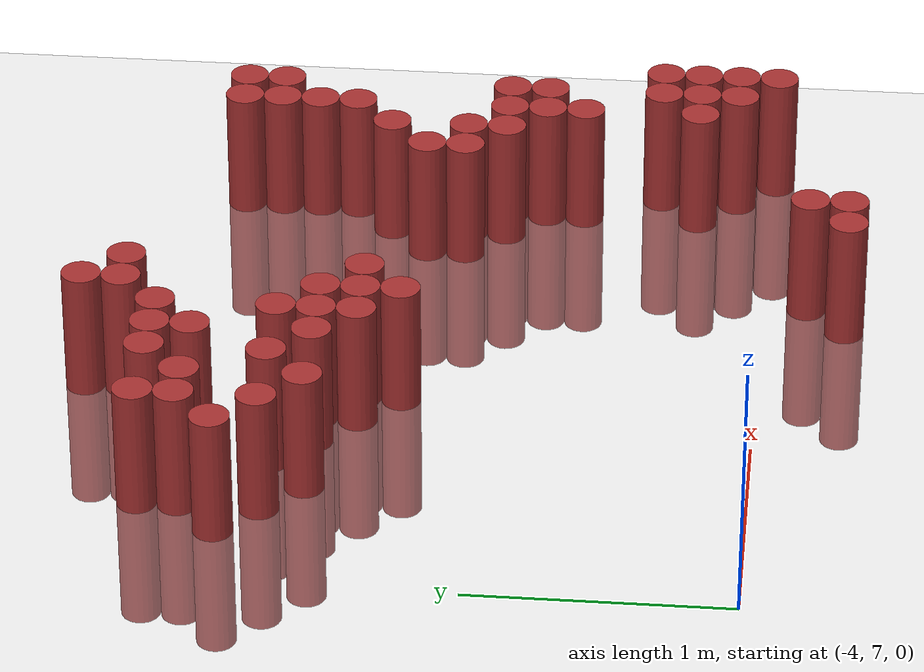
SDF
<sdf version="1.6">
 <world name="default">
  <model name="ground_plane">
   <static>1</static>
   <link name="link">
    <collision name="collision">
     <geometry><plane><normal>0 0 1</normal><size>100 100</size></plane></geometry>
     <surface><friction><ode><mu>100</mu><mu2>50</mu2></ode></friction></surface>
    </collision>
    <visual name="visual">
     <cast_shadows>0</cast_shadows>
     <geometry><plane><normal>0 0 1</normal><size>100 100</size></plane></geometry>
     <material>
      <script><uri>file://media/materials/scripts/gazebo.material</uri><name>Gazebo/Grey</name></script>
     </material>
    </visual>
   </link>
  </model>
  <model name="unit_cylinder_161">
   <static>1</static>
   <pose>-3.675000 8.925000 0.000000 0.000000 0.000000 0.000000</pose>
   <link name="link">
    <inertial>
     <mass>1</mass>
     <inertia><ixx>0.145833</ixx><ixy>0</ixy><ixz>0</ixz><iyy>0.145833</iyy><iyz>0</iyz><izz>0.125</izz></inertia>
    </inertial>
    <collision name="collision">
     <geometry><cylinder><radius>0.075000</radius><length>1</length></cylinder></geometry>
    </collision>
    <visual name="visual">
     <geometry><cylinder><radius>0.075000</radius><length>1</length></cylinder></geometry>
     <material>
      <ambient>0.648000 0.192000 0.192000 1</ambient>
      <diffuse>0.648000 0.192000 0.192000 1</diffuse>
     </material>
     <material>
      <script><name>Gazebo/Grey</name><uri>file://media/materials/scripts/gazebo.material</uri></script>
     </material>
    </visual>
   </link>
  </model>
  <model name="unit_cylinder_162">
   <static>1</static>
   <pose>-3.525000 8.775000 0.000000 0.000000 0.000000 0.000000</pose>
   <link name="link">
    <inertial>
     <mass>1</mass>
     <inertia><ixx>0.145833</ixx><ixy>0</ixy><ixz>0</ixz><iyy>0.145833</iyy><iyz>0</iyz><izz>0.125</izz></inertia>
    </inertial>
    <collision name="collision">
     <geometry><cylinder><radius>0.075000</radius><length>1</length></cylinder></geometry>
    </collision>
    <visual name="visual">
     <geometry><cylinder><radius>0.075000</radius><length>1</length></cylinder></geometry>
     <material>
      <ambient>0.648000 0.192000 0.192000 1</ambient>
      <diffuse>0.648000 0.192000 0.192000 1</diffuse>
     </material>
     <material>
      <script><name>Gazebo/Grey</name><uri>file://media/materials/scripts/gazebo.material</uri></script>
     </material>
    </visual>
   </link>
  </model>
  <model name="unit_cylinder_163">
   <static>1</static>
   <pose>-3.525000 9.075000 0.000000 0.000000 0.000000 0.000000</pose>
   <link name="link">
    <inertial>
     <mass>1</mass>
     <inertia><ixx>0.145833</ixx><ixy>0</ixy><ixz>0</ixz><iyy>0.145833</iyy><iyz>0</iyz><izz>0.125</izz></inertia>
    </inertial>
    <collision name="collision">
     <geometry><cylinder><radius>0.075000</radius><length>1</length></cylinder></geometry>
    </collision>
    <visual name="visual">
     <geometry><cylinder><radius>0.075000</radius><length>1</length></cylinder></geometry>
     <material>
      <ambient>0.648000 0.192000 0.192000 1</ambient>
      <diffuse>0.648000 0.192000 0.192000 1</diffuse>
     </material>
     <material>
      <script><name>Gazebo/Grey</name><uri>file://media/materials/scripts/gazebo.material</uri></script>
     </material>
    </visual>
   </link>
  </model>
  <model name="unit_cylinder_164">
   <static>1</static>
   <pose>-3.525000 9.225000 0.000000 0.000000 0.000000 0.000000</pose>
   <link name="link">
    <inertial>
     <mass>1</mass>
     <inertia><ixx>0.145833</ixx><ixy>0</ixy><ixz>0</ixz><iyy>0.145833</iyy><iyz>0</iyz><izz>0.125</izz></inertia>
    </inertial>
    <collision name="collision">
     <geometry><cylinder><radius>0.075000</radius><length>1</length></cylinder></geometry>
    </collision>
    <visual name="visual">
     <geometry><cylinder><radius>0.075000</radius><length>1</length></cylinder></geometry>
     <material>
      <ambient>0.648000 0.192000 0.192000 1</ambient>
      <diffuse>0.648000 0.192000 0.192000 1</diffuse>
     </material>
     <material>
      <script><name>Gazebo/Grey</name><uri>file://media/materials/scripts/gazebo.material</uri></script>
     </material>
    </visual>
   </link>
  </model>
  <model name="unit_cylinder_165">
   <static>1</static>
   <pose>-3.375000 8.625000 0.000000 0.000000 0.000000 0.000000</pose>
   <link name="link">
    <inertial>
     <mass>1</mass>
     <inertia><ixx>0.145833</ixx><ixy>0</ixy><ixz>0</ixz><iyy>0.145833</iyy><iyz>0</iyz><izz>0.125</izz></inertia>
    </inertial>
    <collision name="collision">
     <geometry><cylinder><radius>0.075000</radius><length>1</length></cylinder></geometry>
    </collision>
    <visual name="visual">
     <geometry><cylinder><radius>0.075000</radius><length>1</length></cylinder></geometry>
     <material>
      <ambient>0.648000 0.192000 0.192000 1</ambient>
      <diffuse>0.648000 0.192000 0.192000 1</diffuse>
     </material>
     <material>
      <script><name>Gazebo/Grey</name><uri>file://media/materials/scripts/gazebo.material</uri></script>
     </material>
    </visual>
   </link>
  </model>
  <model name="unit_cylinder_166">
   <static>1</static>
   <pose>-3.375000 9.075000 0.000000 0.000000 0.000000 0.000000</pose>
   <link name="link">
    <inertial>
     <mass>1</mass>
     <inertia><ixx>0.145833</ixx><ixy>0</ixy><ixz>0</ixz><iyy>0.145833</iyy><iyz>0</iyz><izz>0.125</izz></inertia>
    </inertial>
    <collision name="collision">
     <geometry><cylinder><radius>0.075000</radius><length>1</length></cylinder></geometry>
    </collision>
    <visual name="visual">
     <geometry><cylinder><radius>0.075000</radius><length>1</length></cylinder></geometry>
     <material>
      <ambient>0.648000 0.192000 0.192000 1</ambient>
      <diffuse>0.648000 0.192000 0.192000 1</diffuse>
     </material>
     <material>
      <script><name>Gazebo/Grey</name><uri>file://media/materials/scripts/gazebo.material</uri></script>
     </material>
    </visual>
   </link>
  </model>
  <model name="unit_cylinder_169">
   <static>1</static>
   <pose>-3.225000 8.775000 0.000000 0.000000 0.000000 0.000000</pose>
   <link name="link">
    <inertial>
     <mass>1</mass>
     <inertia><ixx>0.145833</ixx><ixy>0</ixy><ixz>0</ixz><iyy>0.145833</iyy><iyz>0</iyz><izz>0.125</izz></inertia>
    </inertial>
    <collision name="collision">
     <geometry><cylinder><radius>0.075000</radius><length>1</length></cylinder></geometry>
    </collision>
    <visual name="visual">
     <geometry><cylinder><radius>0.075000</radius><length>1</length></cylinder></geometry>
     <material>
      <ambient>0.648000 0.192000 0.192000 1</ambient>
      <diffuse>0.648000 0.192000 0.192000 1</diffuse>
     </material>
     <material>
      <script><name>Gazebo/Grey</name><uri>file://media/materials/scripts/gazebo.material</uri></script>
     </material>
    </visual>
   </link>
  </model>
  <model name="unit_cylinder_170">
   <static>1</static>
   <pose>-3.225000 9.225000 0.000000 0.000000 0.000000 0.000000</pose>
   <link name="link">
    <inertial>
     <mass>1</mass>
     <inertia><ixx>0.145833</ixx><ixy>0</ixy><ixz>0</ixz><iyy>0.145833</iyy><iyz>0</iyz><izz>0.125</izz></inertia>
    </inertial>
    <collision name="collision">
     <geometry><cylinder><radius>0.075000</radius><length>1</length></cylinder></geometry>
    </collision>
    <visual name="visual">
     <geometry><cylinder><radius>0.075000</radius><length>1</length></cylinder></geometry>
     <material>
      <ambient>0.648000 0.192000 0.192000 1</ambient>
      <diffuse>0.648000 0.192000 0.192000 1</diffuse>
     </material>
     <material>
      <script><name>Gazebo/Grey</name><uri>file://media/materials/scripts/gazebo.material</uri></script>
     </material>
    </visual>
   </link>
  </model>
  <model name="unit_cylinder_172">
   <static>1</static>
   <pose>-3.075000 8.625000 0.000000 0.000000 0.000000 0.000000</pose>
   <link name="link">
    <inertial>
     <mass>1</mass>
     <inertia><ixx>0.145833</ixx><ixy>0</ixy><ixz>0</ixz><iyy>0.145833</iyy><iyz>0</iyz><izz>0.125</izz></inertia>
    </inertial>
    <collision name="collision">
     <geometry><cylinder><radius>0.075000</radius><length>1</length></cylinder></geometry>
    </collision>
    <visual name="visual">
     <geometry><cylinder><radius>0.075000</radius><length>1</length></cylinder></geometry>
     <material>
      <ambient>0.648000 0.192000 0.192000 1</ambient>
      <diffuse>0.648000 0.192000 0.192000 1</diffuse>
     </material>
     <material>
      <script><name>Gazebo/Grey</name><uri>file://media/materials/scripts/gazebo.material</uri></script>
     </material>
    </visual>
   </link>
  </model>
  <model name="unit_cylinder_173">
   <static>1</static>
   <pose>-3.075000 9.075000 0.000000 0.000000 0.000000 0.000000</pose>
   <link name="link">
    <inertial>
     <mass>1</mass>
     <inertia><ixx>0.145833</ixx><ixy>0</ixy><ixz>0</ixz><iyy>0.145833</iyy><iyz>0</iyz><izz>0.125</izz></inertia>
    </inertial>
    <collision name="collision">
     <geometry><cylinder><radius>0.075000</radius><length>1</length></cylinder></geometry>
    </collision>
    <visual name="visual">
     <geometry><cylinder><radius>0.075000</radius><length>1</length></cylinder></geometry>
     <material>
      <ambient>0.648000 0.192000 0.192000 1</ambient>
      <diffuse>0.648000 0.192000 0.192000 1</diffuse>
     </material>
     <material>
      <script><name>Gazebo/Grey</name><uri>file://media/materials/scripts/gazebo.material</uri></script>
     </material>
    </visual>
   </link>
  </model>
  <model name="unit_cylinder_174">
   <static>1</static>
   <pose>-3.075000 9.225000 0.000000 0.000000 0.000000 0.000000</pose>
   <link name="link">
    <inertial>
     <mass>1</mass>
     <inertia><ixx>0.145833</ixx><ixy>0</ixy><ixz>0</ixz><iyy>0.145833</iyy><iyz>0</iyz><izz>0.125</izz></inertia>
    </inertial>
    <collision name="collision">
     <geometry><cylinder><radius>0.075000</radius><length>1</length></cylinder></geometry>
    </collision>
    <visual name="visual">
     <geometry><cylinder><radius>0.075000</radius><length>1</length></cylinder></geometry>
     <material>
      <ambient>0.648000 0.192000 0.192000 1</ambient>
      <diffuse>0.648000 0.192000 0.192000 1</diffuse>
     </material>
     <material>
      <script><name>Gazebo/Grey</name><uri>file://media/materials/scripts/gazebo.material</uri></script>
     </material>
    </visual>
   </link>
  </model>
  <model name="unit_cylinder_175">
   <static>1</static>
   <pose>-2.925000 8.475000 0.000000 0.000000 0.000000 0.000000</pose>
   <link name="link">
    <inertial>
     <mass>1</mass>
     <inertia><ixx>0.145833</ixx><ixy>0</ixy><ixz>0</ixz><iyy>0.145833</iyy><iyz>0</iyz><izz>0.125</izz></inertia>
    </inertial>
    <collision name="collision">
     <geometry><cylinder><radius>0.075000</radius><length>1</length></cylinder></geometry>
    </collision>
    <visual name="visual">
     <geometry><cylinder><radius>0.075000</radius><length>1</length></cylinder></geometry>
     <material>
      <ambient>0.648000 0.192000 0.192000 1</ambient>
      <diffuse>0.648000 0.192000 0.192000 1</diffuse>
     </material>
     <material>
      <script><name>Gazebo/Grey</name><uri>file://media/materials/scripts/gazebo.material</uri></script>
     </material>
    </visual>
   </link>
  </model>
  <model name="unit_cylinder_176">
   <static>1</static>
   <pose>-2.925000 8.625000 0.000000 0.000000 0.000000 0.000000</pose>
   <link name="link">
    <inertial>
     <mass>1</mass>
     <inertia><ixx>0.145833</ixx><ixy>0</ixy><ixz>0</ixz><iyy>0.145833</iyy><iyz>0</iyz><izz>0.125</izz></inertia>
    </inertial>
    <collision name="collision">
     <geometry><cylinder><radius>0.075000</radius><length>1</length></cylinder></geometry>
    </collision>
    <visual name="visual">
     <geometry><cylinder><radius>0.075000</radius><length>1</length></cylinder></geometry>
     <material>
      <ambient>0.648000 0.192000 0.192000 1</ambient>
      <diffuse>0.648000 0.192000 0.192000 1</diffuse>
     </material>
     <material>
      <script><name>Gazebo/Grey</name><uri>file://media/materials/scripts/gazebo.material</uri></script>
     </material>
    </visual>
   </link>
  </model>
  <model name="unit_cylinder_177">
   <static>1</static>
   <pose>-2.925000 8.775000 0.000000 0.000000 0.000000 0.000000</pose>
   <link name="link">
    <inertial>
     <mass>1</mass>
     <inertia><ixx>0.145833</ixx><ixy>0</ixy><ixz>0</ixz><iyy>0.145833</iyy><iyz>0</iyz><izz>0.125</izz></inertia>
    </inertial>
    <collision name="collision">
     <geometry><cylinder><radius>0.075000</radius><length>1</length></cylinder></geometry>
    </collision>
    <visual name="visual">
     <geometry><cylinder><radius>0.075000</radius><length>1</length></cylinder></geometry>
     <material>
      <ambient>0.648000 0.192000 0.192000 1</ambient>
      <diffuse>0.648000 0.192000 0.192000 1</diffuse>
     </material>
     <material>
      <script><name>Gazebo/Grey</name><uri>file://media/materials/scripts/gazebo.material</uri></script>
     </material>
    </visual>
   </link>
  </model>
  <model name="unit_cylinder_178">
   <static>1</static>
   <pose>-2.925000 9.225000 0.000000 0.000000 0.000000 0.000000</pose>
   <link name="link">
    <inertial>
     <mass>1</mass>
     <inertia><ixx>0.145833</ixx><ixy>0</ixy><ixz>0</ixz><iyy>0.145833</iyy><iyz>0</iyz><izz>0.125</izz></inertia>
    </inertial>
    <collision name="collision">
     <geometry><cylinder><radius>0.075000</radius><length>1</length></cylinder></geometry>
    </collision>
    <visual name="visual">
     <geometry><cylinder><radius>0.075000</radius><length>1</length></cylinder></geometry>
     <material>
      <ambient>0.648000 0.192000 0.192000 1</ambient>
      <diffuse>0.648000 0.192000 0.192000 1</diffuse>
     </material>
     <material>
      <script><name>Gazebo/Grey</name><uri>file://media/materials/scripts/gazebo.material</uri></script>
     </material>
    </visual>
   </link>
  </model>
  <model name="unit_cylinder_179">
   <static>1</static>
   <pose>-2.775000 8.325000 0.000000 0.000000 0.000000 0.000000</pose>
   <link name="link">
    <inertial>
     <mass>1</mass>
     <inertia><ixx>0.145833</ixx><ixy>0</ixy><ixz>0</ixz><iyy>0.145833</iyy><iyz>0</iyz><izz>0.125</izz></inertia>
    </inertial>
    <collision name="collision">
     <geometry><cylinder><radius>0.075000</radius><length>1</length></cylinder></geometry>
    </collision>
    <visual name="visual">
     <geometry><cylinder><radius>0.075000</radius><length>1</length></cylinder></geometry>
     <material>
      <ambient>0.648000 0.192000 0.192000 1</ambient>
      <diffuse>0.648000 0.192000 0.192000 1</diffuse>
     </material>
     <material>
      <script><name>Gazebo/Grey</name><uri>file://media/materials/scripts/gazebo.material</uri></script>
     </material>
    </visual>
   </link>
  </model>
  <model name="unit_cylinder_180">
   <static>1</static>
   <pose>-2.775000 8.475000 0.000000 0.000000 0.000000 0.000000</pose>
   <link name="link">
    <inertial>
     <mass>1</mass>
     <inertia><ixx>0.145833</ixx><ixy>0</ixy><ixz>0</ixz><iyy>0.145833</iyy><iyz>0</iyz><izz>0.125</izz></inertia>
    </inertial>
    <collision name="collision">
     <geometry><cylinder><radius>0.075000</radius><length>1</length></cylinder></geometry>
    </collision>
    <visual name="visual">
     <geometry><cylinder><radius>0.075000</radius><length>1</length></cylinder></geometry>
     <material>
      <ambient>0.648000 0.192000 0.192000 1</ambient>
      <diffuse>0.648000 0.192000 0.192000 1</diffuse>
     </material>
     <material>
      <script><name>Gazebo/Grey</name><uri>file://media/materials/scripts/gazebo.material</uri></script>
     </material>
    </visual>
   </link>
  </model>
  <model name="unit_cylinder_181">
   <static>1</static>
   <pose>-2.775000 8.625000 0.000000 0.000000 0.000000 0.000000</pose>
   <link name="link">
    <inertial>
     <mass>1</mass>
     <inertia><ixx>0.145833</ixx><ixy>0</ixy><ixz>0</ixz><iyy>0.145833</iyy><iyz>0</iyz><izz>0.125</izz></inertia>
    </inertial>
    <collision name="collision">
     <geometry><cylinder><radius>0.075000</radius><length>1</length></cylinder></geometry>
    </collision>
    <visual name="visual">
     <geometry><cylinder><radius>0.075000</radius><length>1</length></cylinder></geometry>
     <material>
      <ambient>0.648000 0.192000 0.192000 1</ambient>
      <diffuse>0.648000 0.192000 0.192000 1</diffuse>
     </material>
     <material>
      <script><name>Gazebo/Grey</name><uri>file://media/materials/scripts/gazebo.material</uri></script>
     </material>
    </visual>
   </link>
  </model>
  <model name="unit_cylinder_182">
   <static>1</static>
   <pose>-2.775000 9.375000 0.000000 0.000000 0.000000 0.000000</pose>
   <link name="link">
    <inertial>
     <mass>1</mass>
     <inertia><ixx>0.145833</ixx><ixy>0</ixy><ixz>0</ixz><iyy>0.145833</iyy><iyz>0</iyz><izz>0.125</izz></inertia>
    </inertial>
    <collision name="collision">
     <geometry><cylinder><radius>0.075000</radius><length>1</length></cylinder></geometry>
    </collision>
    <visual name="visual">
     <geometry><cylinder><radius>0.075000</radius><length>1</length></cylinder></geometry>
     <material>
      <ambient>0.648000 0.192000 0.192000 1</ambient>
      <diffuse>0.648000 0.192000 0.192000 1</diffuse>
     </material>
     <material>
      <script><name>Gazebo/Grey</name><uri>file://media/materials/scripts/gazebo.material</uri></script>
     </material>
    </visual>
   </link>
  </model>
  <model name="unit_cylinder_183">
   <static>1</static>
   <pose>-2.775000 9.525000 0.000000 0.000000 0.000000 0.000000</pose>
   <link name="link">
    <inertial>
     <mass>1</mass>
     <inertia><ixx>0.145833</ixx><ixy>0</ixy><ixz>0</ixz><iyy>0.145833</iyy><iyz>0</iyz><izz>0.125</izz></inertia>
    </inertial>
    <collision name="collision">
     <geometry><cylinder><radius>0.075000</radius><length>1</length></cylinder></geometry>
    </collision>
    <visual name="visual">
     <geometry><cylinder><radius>0.075000</radius><length>1</length></cylinder></geometry>
     <material>
      <ambient>0.648000 0.192000 0.192000 1</ambient>
      <diffuse>0.648000 0.192000 0.192000 1</diffuse>
     </material>
     <material>
      <script><name>Gazebo/Grey</name><uri>file://media/materials/scripts/gazebo.material</uri></script>
     </material>
    </visual>
   </link>
  </model>
  <model name="unit_cylinder_185">
   <static>1</static>
   <pose>-2.625000 8.475000 0.000000 0.000000 0.000000 0.000000</pose>
   <link name="link">
    <inertial>
     <mass>1</mass>
     <inertia><ixx>0.145833</ixx><ixy>0</ixy><ixz>0</ixz><iyy>0.145833</iyy><iyz>0</iyz><izz>0.125</izz></inertia>
    </inertial>
    <collision name="collision">
     <geometry><cylinder><radius>0.075000</radius><length>1</length></cylinder></geometry>
    </collision>
    <visual name="visual">
     <geometry><cylinder><radius>0.075000</radius><length>1</length></cylinder></geometry>
     <material>
      <ambient>0.648000 0.192000 0.192000 1</ambient>
      <diffuse>0.648000 0.192000 0.192000 1</diffuse>
     </material>
     <material>
      <script><name>Gazebo/Grey</name><uri>file://media/materials/scripts/gazebo.material</uri></script>
     </material>
    </visual>
   </link>
  </model>
  <model name="unit_cylinder_186">
   <static>1</static>
   <pose>-2.625000 9.375000 0.000000 0.000000 0.000000 0.000000</pose>
   <link name="link">
    <inertial>
     <mass>1</mass>
     <inertia><ixx>0.145833</ixx><ixy>0</ixy><ixz>0</ixz><iyy>0.145833</iyy><iyz>0</iyz><izz>0.125</izz></inertia>
    </inertial>
    <collision name="collision">
     <geometry><cylinder><radius>0.075000</radius><length>1</length></cylinder></geometry>
    </collision>
    <visual name="visual">
     <geometry><cylinder><radius>0.075000</radius><length>1</length></cylinder></geometry>
     <material>
      <ambient>0.648000 0.192000 0.192000 1</ambient>
      <diffuse>0.648000 0.192000 0.192000 1</diffuse>
     </material>
     <material>
      <script><name>Gazebo/Grey</name><uri>file://media/materials/scripts/gazebo.material</uri></script>
     </material>
    </visual>
   </link>
  </model>
  <model name="unit_cylinder_193">
   <static>1</static>
   <pose>-2.175000 6.675000 0.000000 0.000000 0.000000 0.000000</pose>
   <link name="link">
    <inertial>
     <mass>1</mass>
     <inertia><ixx>0.145833</ixx><ixy>0</ixy><ixz>0</ixz><iyy>0.145833</iyy><iyz>0</iyz><izz>0.125</izz></inertia>
    </inertial>
    <collision name="collision">
     <geometry><cylinder><radius>0.075000</radius><length>1</length></cylinder></geometry>
    </collision>
    <visual name="visual">
     <geometry><cylinder><radius>0.075000</radius><length>1</length></cylinder></geometry>
     <material>
      <ambient>0.648000 0.192000 0.192000 1</ambient>
      <diffuse>0.648000 0.192000 0.192000 1</diffuse>
     </material>
     <material>
      <script><name>Gazebo/Grey</name><uri>file://media/materials/scripts/gazebo.material</uri></script>
     </material>
    </visual>
   </link>
  </model>
  <model name="unit_cylinder_194">
   <static>1</static>
   <pose>-2.025000 6.675000 0.000000 0.000000 0.000000 0.000000</pose>
   <link name="link">
    <inertial>
     <mass>1</mass>
     <inertia><ixx>0.145833</ixx><ixy>0</ixy><ixz>0</ixz><iyy>0.145833</iyy><iyz>0</iyz><izz>0.125</izz></inertia>
    </inertial>
    <collision name="collision">
     <geometry><cylinder><radius>0.075000</radius><length>1</length></cylinder></geometry>
    </collision>
    <visual name="visual">
     <geometry><cylinder><radius>0.075000</radius><length>1</length></cylinder></geometry>
     <material>
      <ambient>0.648000 0.192000 0.192000 1</ambient>
      <diffuse>0.648000 0.192000 0.192000 1</diffuse>
     </material>
     <material>
      <script><name>Gazebo/Grey</name><uri>file://media/materials/scripts/gazebo.material</uri></script>
     </material>
    </visual>
   </link>
  </model>
  <model name="unit_cylinder_195">
   <static>1</static>
   <pose>-2.025000 6.825000 0.000000 0.000000 0.000000 0.000000</pose>
   <link name="link">
    <inertial>
     <mass>1</mass>
     <inertia><ixx>0.145833</ixx><ixy>0</ixy><ixz>0</ixz><iyy>0.145833</iyy><iyz>0</iyz><izz>0.125</izz></inertia>
    </inertial>
    <collision name="collision">
     <geometry><cylinder><radius>0.075000</radius><length>1</length></cylinder></geometry>
    </collision>
    <visual name="visual">
     <geometry><cylinder><radius>0.075000</radius><length>1</length></cylinder></geometry>
     <material>
      <ambient>0.648000 0.192000 0.192000 1</ambient>
      <diffuse>0.648000 0.192000 0.192000 1</diffuse>
     </material>
     <material>
      <script><name>Gazebo/Grey</name><uri>file://media/materials/scripts/gazebo.material</uri></script>
     </material>
    </visual>
   </link>
  </model>
  <model name="unit_cylinder_198">
   <static>1</static>
   <pose>-1.725000 8.175000 0.000000 0.000000 0.000000 0.000000</pose>
   <link name="link">
    <inertial>
     <mass>1</mass>
     <inertia><ixx>0.145833</ixx><ixy>0</ixy><ixz>0</ixz><iyy>0.145833</iyy><iyz>0</iyz><izz>0.125</izz></inertia>
    </inertial>
    <collision name="collision">
     <geometry><cylinder><radius>0.075000</radius><length>1</length></cylinder></geometry>
    </collision>
    <visual name="visual">
     <geometry><cylinder><radius>0.075000</radius><length>1</length></cylinder></geometry>
     <material>
      <ambient>0.648000 0.192000 0.192000 1</ambient>
      <diffuse>0.648000 0.192000 0.192000 1</diffuse>
     </material>
     <material>
      <script><name>Gazebo/Grey</name><uri>file://media/materials/scripts/gazebo.material</uri></script>
     </material>
    </visual>
   </link>
  </model>
  <model name="unit_cylinder_199">
   <static>1</static>
   <pose>-1.725000 8.325000 0.000000 0.000000 0.000000 0.000000</pose>
   <link name="link">
    <inertial>
     <mass>1</mass>
     <inertia><ixx>0.145833</ixx><ixy>0</ixy><ixz>0</ixz><iyy>0.145833</iyy><iyz>0</iyz><izz>0.125</izz></inertia>
    </inertial>
    <collision name="collision">
     <geometry><cylinder><radius>0.075000</radius><length>1</length></cylinder></geometry>
    </collision>
    <visual name="visual">
     <geometry><cylinder><radius>0.075000</radius><length>1</length></cylinder></geometry>
     <material>
      <ambient>0.648000 0.192000 0.192000 1</ambient>
      <diffuse>0.648000 0.192000 0.192000 1</diffuse>
     </material>
     <material>
      <script><name>Gazebo/Grey</name><uri>file://media/materials/scripts/gazebo.material</uri></script>
     </material>
    </visual>
   </link>
  </model>
  <model name="unit_cylinder_205">
   <static>1</static>
   <pose>-1.575000 8.025000 0.000000 0.000000 0.000000 0.000000</pose>
   <link name="link">
    <inertial>
     <mass>1</mass>
     <inertia><ixx>0.145833</ixx><ixy>0</ixy><ixz>0</ixz><iyy>0.145833</iyy><iyz>0</iyz><izz>0.125</izz></inertia>
    </inertial>
    <collision name="collision">
     <geometry><cylinder><radius>0.075000</radius><length>1</length></cylinder></geometry>
    </collision>
    <visual name="visual">
     <geometry><cylinder><radius>0.075000</radius><length>1</length></cylinder></geometry>
     <material>
      <ambient>0.648000 0.192000 0.192000 1</ambient>
      <diffuse>0.648000 0.192000 0.192000 1</diffuse>
     </material>
     <material>
      <script><name>Gazebo/Grey</name><uri>file://media/materials/scripts/gazebo.material</uri></script>
     </material>
    </visual>
   </link>
  </model>
  <model name="unit_cylinder_206">
   <static>1</static>
   <pose>-1.575000 8.175000 0.000000 0.000000 0.000000 0.000000</pose>
   <link name="link">
    <inertial>
     <mass>1</mass>
     <inertia><ixx>0.145833</ixx><ixy>0</ixy><ixz>0</ixz><iyy>0.145833</iyy><iyz>0</iyz><izz>0.125</izz></inertia>
    </inertial>
    <collision name="collision">
     <geometry><cylinder><radius>0.075000</radius><length>1</length></cylinder></geometry>
    </collision>
    <visual name="visual">
     <geometry><cylinder><radius>0.075000</radius><length>1</length></cylinder></geometry>
     <material>
      <ambient>0.648000 0.192000 0.192000 1</ambient>
      <diffuse>0.648000 0.192000 0.192000 1</diffuse>
     </material>
     <material>
      <script><name>Gazebo/Grey</name><uri>file://media/materials/scripts/gazebo.material</uri></script>
     </material>
    </visual>
   </link>
  </model>
  <model name="unit_cylinder_207">
   <static>1</static>
   <pose>-1.575000 8.475000 0.000000 0.000000 0.000000 0.000000</pose>
   <link name="link">
    <inertial>
     <mass>1</mass>
     <inertia><ixx>0.145833</ixx><ixy>0</ixy><ixz>0</ixz><iyy>0.145833</iyy><iyz>0</iyz><izz>0.125</izz></inertia>
    </inertial>
    <collision name="collision">
     <geometry><cylinder><radius>0.075000</radius><length>1</length></cylinder></geometry>
    </collision>
    <visual name="visual">
     <geometry><cylinder><radius>0.075000</radius><length>1</length></cylinder></geometry>
     <material>
      <ambient>0.648000 0.192000 0.192000 1</ambient>
      <diffuse>0.648000 0.192000 0.192000 1</diffuse>
     </material>
     <material>
      <script><name>Gazebo/Grey</name><uri>file://media/materials/scripts/gazebo.material</uri></script>
     </material>
    </visual>
   </link>
  </model>
  <model name="unit_cylinder_211">
   <static>1</static>
   <pose>-1.425000 7.275000 0.000000 0.000000 0.000000 0.000000</pose>
   <link name="link">
    <inertial>
     <mass>1</mass>
     <inertia><ixx>0.145833</ixx><ixy>0</ixy><ixz>0</ixz><iyy>0.145833</iyy><iyz>0</iyz><izz>0.125</izz></inertia>
    </inertial>
    <collision name="collision">
     <geometry><cylinder><radius>0.075000</radius><length>1</length></cylinder></geometry>
    </collision>
    <visual name="visual">
     <geometry><cylinder><radius>0.075000</radius><length>1</length></cylinder></geometry>
     <material>
      <ambient>0.648000 0.192000 0.192000 1</ambient>
      <diffuse>0.648000 0.192000 0.192000 1</diffuse>
     </material>
     <material>
      <script><name>Gazebo/Grey</name><uri>file://media/materials/scripts/gazebo.material</uri></script>
     </material>
    </visual>
   </link>
  </model>
  <model name="unit_cylinder_212">
   <static>1</static>
   <pose>-1.425000 7.725000 0.000000 0.000000 0.000000 0.000000</pose>
   <link name="link">
    <inertial>
     <mass>1</mass>
     <inertia><ixx>0.145833</ixx><ixy>0</ixy><ixz>0</ixz><iyy>0.145833</iyy><iyz>0</iyz><izz>0.125</izz></inertia>
    </inertial>
    <collision name="collision">
     <geometry><cylinder><radius>0.075000</radius><length>1</length></cylinder></geometry>
    </collision>
    <visual name="visual">
     <geometry><cylinder><radius>0.075000</radius><length>1</length></cylinder></geometry>
     <material>
      <ambient>0.648000 0.192000 0.192000 1</ambient>
      <diffuse>0.648000 0.192000 0.192000 1</diffuse>
     </material>
     <material>
      <script><name>Gazebo/Grey</name><uri>file://media/materials/scripts/gazebo.material</uri></script>
     </material>
    </visual>
   </link>
  </model>
  <model name="unit_cylinder_213">
   <static>1</static>
   <pose>-1.425000 7.875000 0.000000 0.000000 0.000000 0.000000</pose>
   <link name="link">
    <inertial>
     <mass>1</mass>
     <inertia><ixx>0.145833</ixx><ixy>0</ixy><ixz>0</ixz><iyy>0.145833</iyy><iyz>0</iyz><izz>0.125</izz></inertia>
    </inertial>
    <collision name="collision">
     <geometry><cylinder><radius>0.075000</radius><length>1</length></cylinder></geometry>
    </collision>
    <visual name="visual">
     <geometry><cylinder><radius>0.075000</radius><length>1</length></cylinder></geometry>
     <material>
      <ambient>0.648000 0.192000 0.192000 1</ambient>
      <diffuse>0.648000 0.192000 0.192000 1</diffuse>
     </material>
     <material>
      <script><name>Gazebo/Grey</name><uri>file://media/materials/scripts/gazebo.material</uri></script>
     </material>
    </visual>
   </link>
  </model>
  <model name="unit_cylinder_214">
   <static>1</static>
   <pose>-1.425000 8.025000 0.000000 0.000000 0.000000 0.000000</pose>
   <link name="link">
    <inertial>
     <mass>1</mass>
     <inertia><ixx>0.145833</ixx><ixy>0</ixy><ixz>0</ixz><iyy>0.145833</iyy><iyz>0</iyz><izz>0.125</izz></inertia>
    </inertial>
    <collision name="collision">
     <geometry><cylinder><radius>0.075000</radius><length>1</length></cylinder></geometry>
    </collision>
    <visual name="visual">
     <geometry><cylinder><radius>0.075000</radius><length>1</length></cylinder></geometry>
     <material>
      <ambient>0.648000 0.192000 0.192000 1</ambient>
      <diffuse>0.648000 0.192000 0.192000 1</diffuse>
     </material>
     <material>
      <script><name>Gazebo/Grey</name><uri>file://media/materials/scripts/gazebo.material</uri></script>
     </material>
    </visual>
   </link>
  </model>
  <model name="unit_cylinder_215">
   <static>1</static>
   <pose>-1.425000 8.625000 0.000000 0.000000 0.000000 0.000000</pose>
   <link name="link">
    <inertial>
     <mass>1</mass>
     <inertia><ixx>0.145833</ixx><ixy>0</ixy><ixz>0</ixz><iyy>0.145833</iyy><iyz>0</iyz><izz>0.125</izz></inertia>
    </inertial>
    <collision name="collision">
     <geometry><cylinder><radius>0.075000</radius><length>1</length></cylinder></geometry>
    </collision>
    <visual name="visual">
     <geometry><cylinder><radius>0.075000</radius><length>1</length></cylinder></geometry>
     <material>
      <ambient>0.648000 0.192000 0.192000 1</ambient>
      <diffuse>0.648000 0.192000 0.192000 1</diffuse>
     </material>
     <material>
      <script><name>Gazebo/Grey</name><uri>file://media/materials/scripts/gazebo.material</uri></script>
     </material>
    </visual>
   </link>
  </model>
  <model name="unit_cylinder_216">
   <static>1</static>
   <pose>-1.425000 8.775000 0.000000 0.000000 0.000000 0.000000</pose>
   <link name="link">
    <inertial>
     <mass>1</mass>
     <inertia><ixx>0.145833</ixx><ixy>0</ixy><ixz>0</ixz><iyy>0.145833</iyy><iyz>0</iyz><izz>0.125</izz></inertia>
    </inertial>
    <collision name="collision">
     <geometry><cylinder><radius>0.075000</radius><length>1</length></cylinder></geometry>
    </collision>
    <visual name="visual">
     <geometry><cylinder><radius>0.075000</radius><length>1</length></cylinder></geometry>
     <material>
      <ambient>0.648000 0.192000 0.192000 1</ambient>
      <diffuse>0.648000 0.192000 0.192000 1</diffuse>
     </material>
     <material>
      <script><name>Gazebo/Grey</name><uri>file://media/materials/scripts/gazebo.material</uri></script>
     </material>
    </visual>
   </link>
  </model>
  <model name="unit_cylinder_217">
   <static>1</static>
   <pose>-1.425000 8.925000 0.000000 0.000000 0.000000 0.000000</pose>
   <link name="link">
    <inertial>
     <mass>1</mass>
     <inertia><ixx>0.145833</ixx><ixy>0</ixy><ixz>0</ixz><iyy>0.145833</iyy><iyz>0</iyz><izz>0.125</izz></inertia>
    </inertial>
    <collision name="collision">
     <geometry><cylinder><radius>0.075000</radius><length>1</length></cylinder></geometry>
    </collision>
    <visual name="visual">
     <geometry><cylinder><radius>0.075000</radius><length>1</length></cylinder></geometry>
     <material>
      <ambient>0.648000 0.192000 0.192000 1</ambient>
      <diffuse>0.648000 0.192000 0.192000 1</diffuse>
     </material>
     <material>
      <script><name>Gazebo/Grey</name><uri>file://media/materials/scripts/gazebo.material</uri></script>
     </material>
    </visual>
   </link>
  </model>
  <model name="unit_cylinder_218">
   <static>1</static>
   <pose>-1.425000 9.075000 0.000000 0.000000 0.000000 0.000000</pose>
   <link name="link">
    <inertial>
     <mass>1</mass>
     <inertia><ixx>0.145833</ixx><ixy>0</ixy><ixz>0</ixz><iyy>0.145833</iyy><iyz>0</iyz><izz>0.125</izz></inertia>
    </inertial>
    <collision name="collision">
     <geometry><cylinder><radius>0.075000</radius><length>1</length></cylinder></geometry>
    </collision>
    <visual name="visual">
     <geometry><cylinder><radius>0.075000</radius><length>1</length></cylinder></geometry>
     <material>
      <ambient>0.648000 0.192000 0.192000 1</ambient>
      <diffuse>0.648000 0.192000 0.192000 1</diffuse>
     </material>
     <material>
      <script><name>Gazebo/Grey</name><uri>file://media/materials/scripts/gazebo.material</uri></script>
     </material>
    </visual>
   </link>
  </model>
  <model name="unit_cylinder_220">
   <static>1</static>
   <pose>-1.275000 7.125000 0.000000 0.000000 0.000000 0.000000</pose>
   <link name="link">
    <inertial>
     <mass>1</mass>
     <inertia><ixx>0.145833</ixx><ixy>0</ixy><ixz>0</ixz><iyy>0.145833</iyy><iyz>0</iyz><izz>0.125</izz></inertia>
    </inertial>
    <collision name="collision">
     <geometry><cylinder><radius>0.075000</radius><length>1</length></cylinder></geometry>
    </collision>
    <visual name="visual">
     <geometry><cylinder><radius>0.075000</radius><length>1</length></cylinder></geometry>
     <material>
      <ambient>0.648000 0.192000 0.192000 1</ambient>
      <diffuse>0.648000 0.192000 0.192000 1</diffuse>
     </material>
     <material>
      <script><name>Gazebo/Grey</name><uri>file://media/materials/scripts/gazebo.material</uri></script>
     </material>
    </visual>
   </link>
  </model>
  <model name="unit_cylinder_221">
   <static>1</static>
   <pose>-1.275000 7.275000 0.000000 0.000000 0.000000 0.000000</pose>
   <link name="link">
    <inertial>
     <mass>1</mass>
     <inertia><ixx>0.145833</ixx><ixy>0</ixy><ixz>0</ixz><iyy>0.145833</iyy><iyz>0</iyz><izz>0.125</izz></inertia>
    </inertial>
    <collision name="collision">
     <geometry><cylinder><radius>0.075000</radius><length>1</length></cylinder></geometry>
    </collision>
    <visual name="visual">
     <geometry><cylinder><radius>0.075000</radius><length>1</length></cylinder></geometry>
     <material>
      <ambient>0.648000 0.192000 0.192000 1</ambient>
      <diffuse>0.648000 0.192000 0.192000 1</diffuse>
     </material>
     <material>
      <script><name>Gazebo/Grey</name><uri>file://media/materials/scripts/gazebo.material</uri></script>
     </material>
    </visual>
   </link>
  </model>
  <model name="unit_cylinder_222">
   <static>1</static>
   <pose>-1.275000 7.425000 0.000000 0.000000 0.000000 0.000000</pose>
   <link name="link">
    <inertial>
     <mass>1</mass>
     <inertia><ixx>0.145833</ixx><ixy>0</ixy><ixz>0</ixz><iyy>0.145833</iyy><iyz>0</iyz><izz>0.125</izz></inertia>
    </inertial>
    <collision name="collision">
     <geometry><cylinder><radius>0.075000</radius><length>1</length></cylinder></geometry>
    </collision>
    <visual name="visual">
     <geometry><cylinder><radius>0.075000</radius><length>1</length></cylinder></geometry>
     <material>
      <ambient>0.648000 0.192000 0.192000 1</ambient>
      <diffuse>0.648000 0.192000 0.192000 1</diffuse>
     </material>
     <material>
      <script><name>Gazebo/Grey</name><uri>file://media/materials/scripts/gazebo.material</uri></script>
     </material>
    </visual>
   </link>
  </model>
  <model name="unit_cylinder_223">
   <static>1</static>
   <pose>-1.275000 7.875000 0.000000 0.000000 0.000000 0.000000</pose>
   <link name="link">
    <inertial>
     <mass>1</mass>
     <inertia><ixx>0.145833</ixx><ixy>0</ixy><ixz>0</ixz><iyy>0.145833</iyy><iyz>0</iyz><izz>0.125</izz></inertia>
    </inertial>
    <collision name="collision">
     <geometry><cylinder><radius>0.075000</radius><length>1</length></cylinder></geometry>
    </collision>
    <visual name="visual">
     <geometry><cylinder><radius>0.075000</radius><length>1</length></cylinder></geometry>
     <material>
      <ambient>0.648000 0.192000 0.192000 1</ambient>
      <diffuse>0.648000 0.192000 0.192000 1</diffuse>
     </material>
     <material>
      <script><name>Gazebo/Grey</name><uri>file://media/materials/scripts/gazebo.material</uri></script>
     </material>
    </visual>
   </link>
  </model>
  <model name="unit_cylinder_224">
   <static>1</static>
   <pose>-1.275000 8.025000 0.000000 0.000000 0.000000 0.000000</pose>
   <link name="link">
    <inertial>
     <mass>1</mass>
     <inertia><ixx>0.145833</ixx><ixy>0</ixy><ixz>0</ixz><iyy>0.145833</iyy><iyz>0</iyz><izz>0.125</izz></inertia>
    </inertial>
    <collision name="collision">
     <geometry><cylinder><radius>0.075000</radius><length>1</length></cylinder></geometry>
    </collision>
    <visual name="visual">
     <geometry><cylinder><radius>0.075000</radius><length>1</length></cylinder></geometry>
     <material>
      <ambient>0.648000 0.192000 0.192000 1</ambient>
      <diffuse>0.648000 0.192000 0.192000 1</diffuse>
     </material>
     <material>
      <script><name>Gazebo/Grey</name><uri>file://media/materials/scripts/gazebo.material</uri></script>
     </material>
    </visual>
   </link>
  </model>
  <model name="unit_cylinder_225">
   <static>1</static>
   <pose>-1.275000 8.925000 0.000000 0.000000 0.000000 0.000000</pose>
   <link name="link">
    <inertial>
     <mass>1</mass>
     <inertia><ixx>0.145833</ixx><ixy>0</ixy><ixz>0</ixz><iyy>0.145833</iyy><iyz>0</iyz><izz>0.125</izz></inertia>
    </inertial>
    <collision name="collision">
     <geometry><cylinder><radius>0.075000</radius><length>1</length></cylinder></geometry>
    </collision>
    <visual name="visual">
     <geometry><cylinder><radius>0.075000</radius><length>1</length></cylinder></geometry>
     <material>
      <ambient>0.648000 0.192000 0.192000 1</ambient>
      <diffuse>0.648000 0.192000 0.192000 1</diffuse>
     </material>
     <material>
      <script><name>Gazebo/Grey</name><uri>file://media/materials/scripts/gazebo.material</uri></script>
     </material>
    </visual>
   </link>
  </model>
  <model name="unit_cylinder_226">
   <static>1</static>
   <pose>-1.275000 9.075000 0.000000 0.000000 0.000000 0.000000</pose>
   <link name="link">
    <inertial>
     <mass>1</mass>
     <inertia><ixx>0.145833</ixx><ixy>0</ixy><ixz>0</ixz><iyy>0.145833</iyy><iyz>0</iyz><izz>0.125</izz></inertia>
    </inertial>
    <collision name="collision">
     <geometry><cylinder><radius>0.075000</radius><length>1</length></cylinder></geometry>
    </collision>
    <visual name="visual">
     <geometry><cylinder><radius>0.075000</radius><length>1</length></cylinder></geometry>
     <material>
      <ambient>0.648000 0.192000 0.192000 1</ambient>
      <diffuse>0.648000 0.192000 0.192000 1</diffuse>
     </material>
     <material>
      <script><name>Gazebo/Grey</name><uri>file://media/materials/scripts/gazebo.material</uri></script>
     </material>
    </visual>
   </link>
  </model>
  <model name="unit_cylinder_227">
   <static>1</static>
   <pose>-1.125000 6.975000 0.000000 0.000000 0.000000 0.000000</pose>
   <link name="link">
    <inertial>
     <mass>1</mass>
     <inertia><ixx>0.145833</ixx><ixy>0</ixy><ixz>0</ixz><iyy>0.145833</iyy><iyz>0</iyz><izz>0.125</izz></inertia>
    </inertial>
    <collision name="collision">
     <geometry><cylinder><radius>0.075000</radius><length>1</length></cylinder></geometry>
    </collision>
    <visual name="visual">
     <geometry><cylinder><radius>0.075000</radius><length>1</length></cylinder></geometry>
     <material>
      <ambient>0.648000 0.192000 0.192000 1</ambient>
      <diffuse>0.648000 0.192000 0.192000 1</diffuse>
     </material>
     <material>
      <script><name>Gazebo/Grey</name><uri>file://media/materials/scripts/gazebo.material</uri></script>
     </material>
    </visual>
   </link>
  </model>
  <model name="unit_cylinder_228">
   <static>1</static>
   <pose>-1.125000 7.125000 0.000000 0.000000 0.000000 0.000000</pose>
   <link name="link">
    <inertial>
     <mass>1</mass>
     <inertia><ixx>0.145833</ixx><ixy>0</ixy><ixz>0</ixz><iyy>0.145833</iyy><iyz>0</iyz><izz>0.125</izz></inertia>
    </inertial>
    <collision name="collision">
     <geometry><cylinder><radius>0.075000</radius><length>1</length></cylinder></geometry>
    </collision>
    <visual name="visual">
     <geometry><cylinder><radius>0.075000</radius><length>1</length></cylinder></geometry>
     <material>
      <ambient>0.648000 0.192000 0.192000 1</ambient>
      <diffuse>0.648000 0.192000 0.192000 1</diffuse>
     </material>
     <material>
      <script><name>Gazebo/Grey</name><uri>file://media/materials/scripts/gazebo.material</uri></script>
     </material>
    </visual>
   </link>
  </model>
  <model name="unit_cylinder_229">
   <static>1</static>
   <pose>-1.125000 7.275000 0.000000 0.000000 0.000000 0.000000</pose>
   <link name="link">
    <inertial>
     <mass>1</mass>
     <inertia><ixx>0.145833</ixx><ixy>0</ixy><ixz>0</ixz><iyy>0.145833</iyy><iyz>0</iyz><izz>0.125</izz></inertia>
    </inertial>
    <collision name="collision">
     <geometry><cylinder><radius>0.075000</radius><length>1</length></cylinder></geometry>
    </collision>
    <visual name="visual">
     <geometry><cylinder><radius>0.075000</radius><length>1</length></cylinder></geometry>
     <material>
      <ambient>0.648000 0.192000 0.192000 1</ambient>
      <diffuse>0.648000 0.192000 0.192000 1</diffuse>
     </material>
     <material>
      <script><name>Gazebo/Grey</name><uri>file://media/materials/scripts/gazebo.material</uri></script>
     </material>
    </visual>
   </link>
  </model>
  <model name="unit_cylinder_230">
   <static>1</static>
   <pose>-1.125000 7.425000 0.000000 0.000000 0.000000 0.000000</pose>
   <link name="link">
    <inertial>
     <mass>1</mass>
     <inertia><ixx>0.145833</ixx><ixy>0</ixy><ixz>0</ixz><iyy>0.145833</iyy><iyz>0</iyz><izz>0.125</izz></inertia>
    </inertial>
    <collision name="collision">
     <geometry><cylinder><radius>0.075000</radius><length>1</length></cylinder></geometry>
    </collision>
    <visual name="visual">
     <geometry><cylinder><radius>0.075000</radius><length>1</length></cylinder></geometry>
     <material>
      <ambient>0.648000 0.192000 0.192000 1</ambient>
      <diffuse>0.648000 0.192000 0.192000 1</diffuse>
     </material>
     <material>
      <script><name>Gazebo/Grey</name><uri>file://media/materials/scripts/gazebo.material</uri></script>
     </material>
    </visual>
   </link>
  </model>
 </world>
</sdf>
